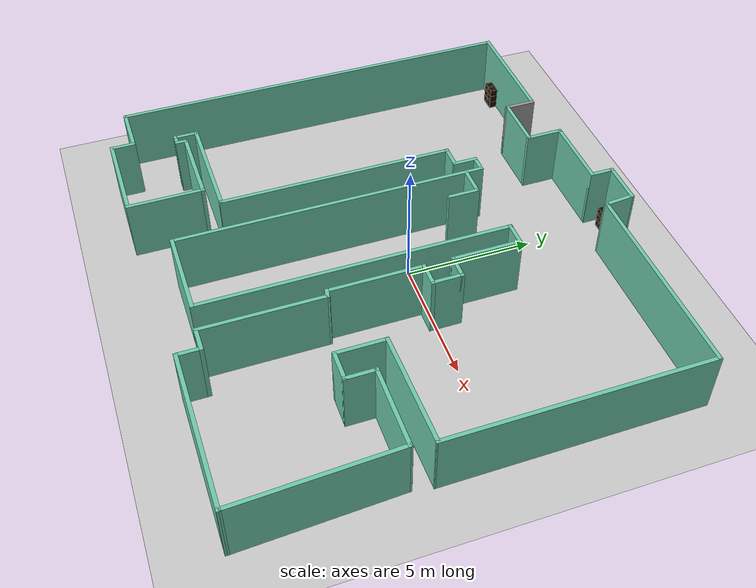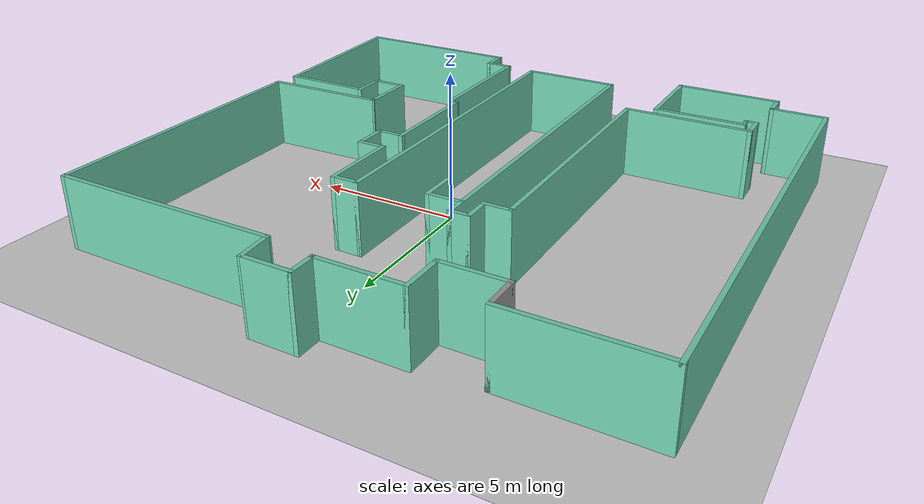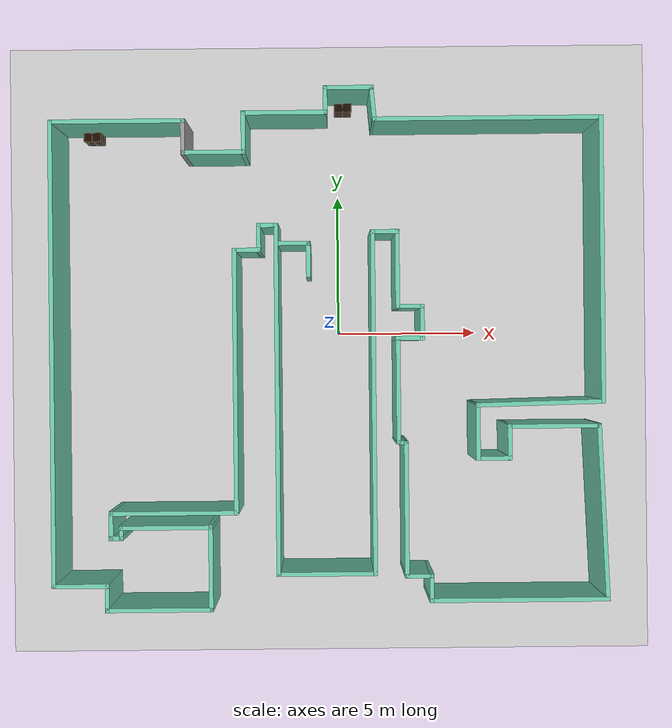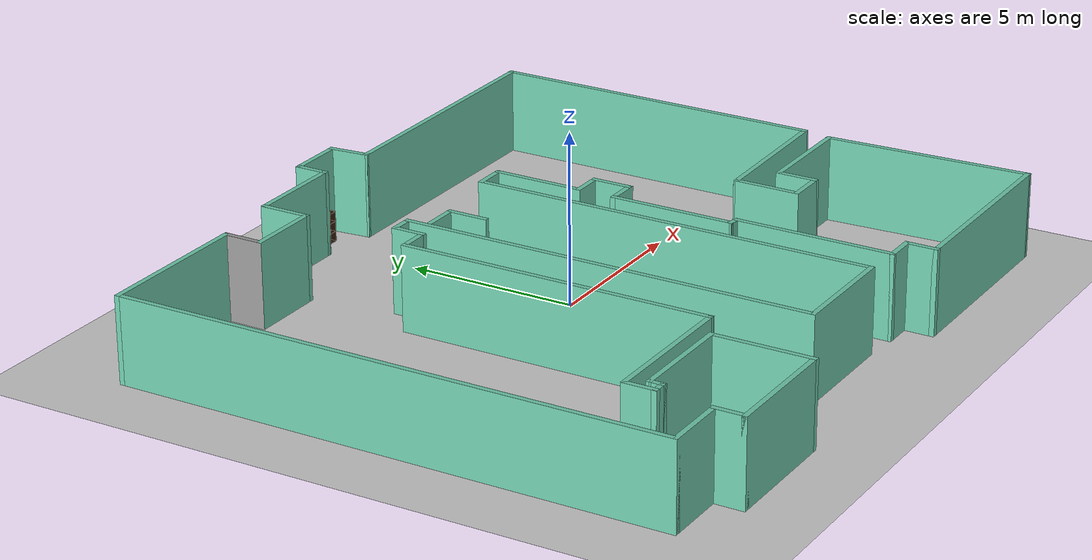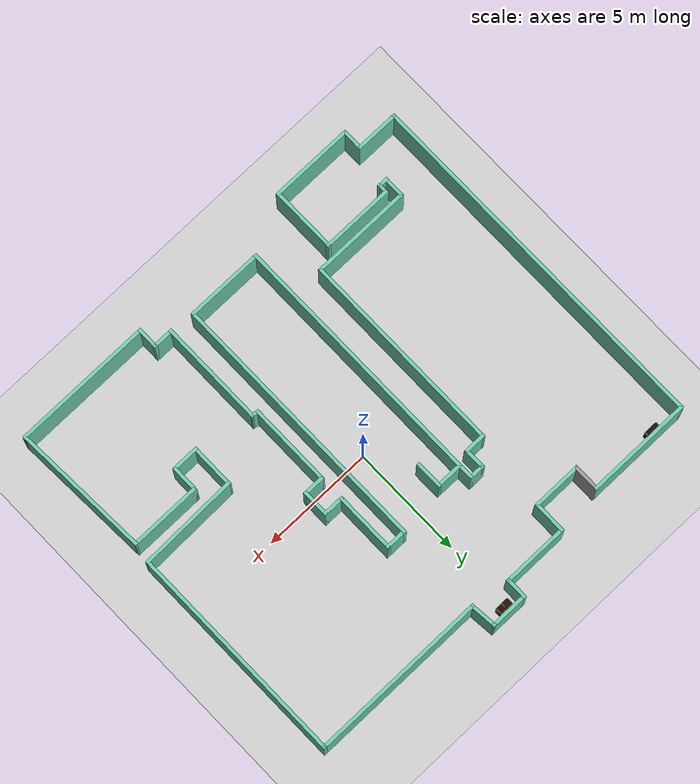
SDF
<sdf version="1.6">
 <world name="default">
  <model name="ground_plane">
   <static>1</static>
   <link name="link">
    <collision name="collision">
     <geometry><plane><normal>0 0 1</normal><size>100 100</size></plane></geometry>
     <surface>
      <contact><collide_bitmask>65535</collide_bitmask></contact>
      <friction><ode><mu>100</mu><mu2>50</mu2></ode></friction>
     </surface>
    </collision>
    <visual name="visual">
     <cast_shadows>0</cast_shadows>
     <geometry><plane><normal>0 0 1</normal><size>100 100</size></plane></geometry>
     <material>
      <script><uri>file://media/materials/scripts/gazebo.material</uri><name>Gazebo/Grey</name></script>
     </material>
    </visual>
   </link>
  </model>
  <model name="map_111">
   <pose>-0.368645 -0.515796 0 0 -0 0</pose>
   <link name="Wall_10">
    <collision name="Wall_10_Collision">
     <geometry><box><size>16.25 0.15 2.5</size></box></geometry>
     <pose>0 0 1.25 0 -0 0</pose>
    </collision>
    <visual name="Wall_10_Visual">
     <pose>0 0 1.25 0 -0 0</pose>
     <geometry><box><size>16.25 0.15 2.5</size></box></geometry>
     <material>
      <script><uri>file://media/materials/scripts/gazebo.material</uri><name>Gazebo/Grey</name></script>
      <ambient>0.435294 0.796078 0.67451 1</ambient>
     </material>
     <meta><layer>0</layer></meta>
    </visual>
    <pose>-9.60153 -0.128241 0 0 -0 -1.5708</pose>
   </link>
   <link name="Wall_15">
    <collision name="Wall_15_Collision">
     <geometry><box><size>10 0.15 2.5</size></box></geometry>
     <pose>0 0 1.25 0 -0 0</pose>
    </collision>
    <visual name="Wall_15_Visual">
     <pose>0 0 1.25 0 -0 0</pose>
     <geometry><box><size>10 0.15 2.5</size></box></geometry>
     <material>
      <script><uri>file://media/materials/scripts/gazebo.material</uri><name>Gazebo/Grey</name></script>
      <ambient>0.435294 0.796078 0.67451 1</ambient>
     </material>
     <meta><layer>0</layer></meta>
    </visual>
    <pose>9.49847 2.99676 0 0 -0 -1.5708</pose>
   </link>
   <link name="Wall_16">
    <collision name="Wall_16_Collision">
     <geometry><box><size>4.5 0.15 2.5</size></box></geometry>
     <pose>0 0 1.25 0 -0 0</pose>
    </collision>
    <visual name="Wall_16_Visual">
     <pose>0 0 1.25 0 -0 0</pose>
     <geometry><box><size>4.5 0.15 2.5</size></box></geometry>
     <material>
      <script><uri>file://media/materials/scripts/gazebo.material</uri><name>Gazebo/Grey</name></script>
      <ambient>0.435294 0.796078 0.67451 1</ambient>
     </material>
     <meta><layer>0</layer></meta>
    </visual>
    <pose>7.32347 -1.97477 0 0 -0 -3.12021</pose>
   </link>
   <link name="Wall_22">
    <collision name="Wall_22_Collision">
     <geometry><box><size>6.25 0.15 2.5</size></box></geometry>
     <pose>0 0 1.25 0 -0 0</pose>
    </collision>
    <visual name="Wall_22_Visual">
     <pose>0 0 1.25 0 -0 0</pose>
     <geometry><box><size>6.25 0.15 2.5</size></box></geometry>
     <material>
      <script><uri>file://media/materials/scripts/gazebo.material</uri><name>Gazebo/Grey</name></script>
      <ambient>0.435294 0.796078 0.67451 1</ambient>
     </material>
     <meta><layer>0</layer></meta>
    </visual>
    <pose>6.54847 -8.77824 0 0 -0 3.14159</pose>
   </link>
   <link name="Wall_23">
    <collision name="Wall_23_Collision">
     <geometry><box><size>1 0.15 2.5</size></box></geometry>
     <pose>0 0 1.25 0 -0 0</pose>
    </collision>
    <visual name="Wall_23_Visual">
     <pose>0 0 1.25 0 -0 0</pose>
     <geometry><box><size>1 0.15 2.5</size></box></geometry>
     <material>
      <script><uri>file://media/materials/scripts/gazebo.material</uri><name>Gazebo/Grey</name></script>
      <ambient>0.435294 0.796078 0.67451 1</ambient>
     </material>
     <meta><layer>0</layer></meta>
    </visual>
    <pose>3.49847 -8.35324 0 0 -0 1.5708</pose>
   </link>
   <link name="Wall_24">
    <collision name="Wall_24_Collision">
     <geometry><box><size>1 0.15 2.5</size></box></geometry>
     <pose>0 0 1.25 0 -0 0</pose>
    </collision>
    <visual name="Wall_24_Visual">
     <pose>0 0 1.25 0 -0 0</pose>
     <geometry><box><size>1 0.15 2.5</size></box></geometry>
     <material>
      <script><uri>file://media/materials/scripts/gazebo.material</uri><name>Gazebo/Grey</name></script>
      <ambient>0.435294 0.796078 0.67451 1</ambient>
     </material>
     <meta><layer>0</layer></meta>
    </visual>
    <pose>3.07347 -7.92824 0 0 -0 3.14159</pose>
   </link>
   <link name="Wall_25">
    <collision name="Wall_25_Collision">
     <geometry><box><size>4.75 0.15 2.5</size></box></geometry>
     <pose>0 0 1.25 0 -0 0</pose>
    </collision>
    <visual name="Wall_25_Visual">
     <pose>0 0 1.25 0 -0 0</pose>
     <geometry><box><size>4.75 0.15 2.5</size></box></geometry>
     <material>
      <script><uri>file://media/materials/scripts/gazebo.material</uri><name>Gazebo/Grey</name></script>
      <ambient>0.435294 0.796078 0.67451 1</ambient>
     </material>
     <meta><layer>0</layer></meta>
    </visual>
    <pose>2.64847 -5.62824 0 0 -0 1.5708</pose>
   </link>
   <link name="Wall_27">
    <collision name="Wall_27_Collision">
     <geometry><box><size>2 0.15 2.5</size></box></geometry>
     <pose>0 0 1.25 0 -0 0</pose>
    </collision>
    <visual name="Wall_27_Visual">
     <pose>0 0 1.25 0 -0 0</pose>
     <geometry><box><size>2 0.15 2.5</size></box></geometry>
     <material>
      <script><uri>file://media/materials/scripts/gazebo.material</uri><name>Gazebo/Grey</name></script>
      <ambient>0.435294 0.796078 0.67451 1</ambient>
     </material>
     <meta><layer>0</layer></meta>
    </visual>
    <pose>5.14847 -2.94629 0 0 -0 -1.5708</pose>
   </link>
   <link name="Wall_28">
    <collision name="Wall_28_Collision">
     <geometry><box><size>1.25 0.15 2.5</size></box></geometry>
     <pose>0 0 1.25 0 -0 0</pose>
    </collision>
    <visual name="Wall_28_Visual">
     <pose>0 0 1.25 0 -0 0</pose>
     <geometry><box><size>1.25 0.15 2.5</size></box></geometry>
     <material>
      <script><uri>file://media/materials/scripts/gazebo.material</uri><name>Gazebo/Grey</name></script>
      <ambient>0.435294 0.796078 0.67451 1</ambient>
     </material>
     <meta><layer>0</layer></meta>
    </visual>
    <pose>5.69847 -3.87129 0 0 -0 0</pose>
   </link>
   <link name="Wall_30">
    <collision name="Wall_30_Collision">
     <geometry><box><size>1.25 0.15 2.5</size></box></geometry>
     <pose>0 0 1.25 0 -0 0</pose>
    </collision>
    <visual name="Wall_30_Visual">
     <pose>0 0 1.25 0 -0 0</pose>
     <geometry><box><size>1.25 0.15 2.5</size></box></geometry>
     <material>
      <script><uri>file://media/materials/scripts/gazebo.material</uri><name>Gazebo/Grey</name></script>
      <ambient>0.435294 0.796078 0.67451 1</ambient>
     </material>
     <meta><layer>0</layer></meta>
    </visual>
    <pose>6.24847 -3.32129 0 0 -0 1.5708</pose>
   </link>
   <link name="Wall_31">
    <collision name="Wall_31_Collision">
     <geometry><box><size>3.25 0.15 2.5</size></box></geometry>
     <pose>0 0 1.25 0 -0 0</pose>
    </collision>
    <visual name="Wall_31_Visual">
     <pose>0 0 1.25 0 -0 0</pose>
     <geometry><box><size>3.25 0.15 2.5</size></box></geometry>
     <material>
      <script><uri>file://media/materials/scripts/gazebo.material</uri><name>Gazebo/Grey</name></script>
      <ambient>0.435294 0.796078 0.67451 1</ambient>
     </material>
     <meta><layer>0</layer></meta>
    </visual>
    <pose>7.79847 -2.77129 0 0 -0 0</pose>
   </link>
   <link name="Wall_33">
    <collision name="Wall_33_Collision">
     <geometry><box><size>6.16215 0.15 2.5</size></box></geometry>
     <pose>0 0 1.25 0 -0 0</pose>
    </collision>
    <visual name="Wall_33_Visual">
     <pose>0 0 1.25 0 -0 0</pose>
     <geometry><box><size>6.16215 0.15 2.5</size></box></geometry>
     <material>
      <script><uri>file://media/materials/scripts/gazebo.material</uri><name>Gazebo/Grey</name></script>
      <ambient>0.435294 0.796078 0.67451 1</ambient>
     </material>
     <meta><layer>0</layer></meta>
    </visual>
    <pose>9.47347 -5.77477 0 0 -0 1.61239</pose>
   </link>
   <link name="Wall_35">
    <collision name="Wall_35_Collision">
     <geometry><box><size>2 0.15 2.5</size></box></geometry>
     <pose>0 0 1.25 0 -0 0</pose>
    </collision>
    <visual name="Wall_35_Visual">
     <pose>0 0 1.25 0 -0 0</pose>
     <geometry><box><size>2 0.15 2.5</size></box></geometry>
     <material>
      <script><uri>file://media/materials/scripts/gazebo.material</uri><name>Gazebo/Grey</name></script>
      <ambient>0.435294 0.796078 0.67451 1</ambient>
     </material>
     <meta><layer>0</layer></meta>
    </visual>
    <pose>-8.67653 -8.17824 0 0 -0 0</pose>
   </link>
   <link name="Wall_36">
    <collision name="Wall_36_Collision">
     <geometry><box><size>1 0.15 2.5</size></box></geometry>
     <pose>0 0 1.25 0 -0 0</pose>
    </collision>
    <visual name="Wall_36_Visual">
     <pose>0 0 1.25 0 -0 0</pose>
     <geometry><box><size>1 0.15 2.5</size></box></geometry>
     <material>
      <script><uri>file://media/materials/scripts/gazebo.material</uri><name>Gazebo/Grey</name></script>
      <ambient>0.435294 0.796078 0.67451 1</ambient>
     </material>
     <meta><layer>0</layer></meta>
    </visual>
    <pose>-7.75153 -8.60324 0 0 -0 -1.5708</pose>
   </link>
   <link name="Wall_37">
    <collision name="Wall_37_Collision">
     <geometry><box><size>3.75 0.15 2.5</size></box></geometry>
     <pose>0 0 1.25 0 -0 0</pose>
    </collision>
    <visual name="Wall_37_Visual">
     <pose>0 0 1.25 0 -0 0</pose>
     <geometry><box><size>3.75 0.15 2.5</size></box></geometry>
     <material>
      <script><uri>file://media/materials/scripts/gazebo.material</uri><name>Gazebo/Grey</name></script>
      <ambient>0.435294 0.796078 0.67451 1</ambient>
     </material>
     <meta><layer>0</layer></meta>
    </visual>
    <pose>-5.95153 -9.02824 0 0 -0 0</pose>
   </link>
   <link name="Wall_38">
    <collision name="Wall_38_Collision">
     <geometry><box><size>3 0.15 2.5</size></box></geometry>
     <pose>0 0 1.25 0 -0 0</pose>
    </collision>
    <visual name="Wall_38_Visual">
     <pose>0 0 1.25 0 -0 0</pose>
     <geometry><box><size>3 0.15 2.5</size></box></geometry>
     <material>
      <script><uri>file://media/materials/scripts/gazebo.material</uri><name>Gazebo/Grey</name></script>
      <ambient>0.435294 0.796078 0.67451 1</ambient>
     </material>
     <meta><layer>0</layer></meta>
    </visual>
    <pose>-4.15153 -7.60324 0 0 -0 1.5708</pose>
   </link>
   <link name="Wall_39">
    <collision name="Wall_39_Collision">
     <geometry><box><size>3.25 0.15 2.5</size></box></geometry>
     <pose>0 0 1.25 0 -0 0</pose>
    </collision>
    <visual name="Wall_39_Visual">
     <pose>0 0 1.25 0 -0 0</pose>
     <geometry><box><size>3.25 0.15 2.5</size></box></geometry>
     <material>
      <script><uri>file://media/materials/scripts/gazebo.material</uri><name>Gazebo/Grey</name></script>
      <ambient>0.435294 0.796078 0.67451 1</ambient>
     </material>
     <meta><layer>0</layer></meta>
    </visual>
    <pose>-5.70153 -6.17824 0 0 -0 3.14159</pose>
   </link>
   <link name="Wall_40">
    <collision name="Wall_40_Collision">
     <geometry><box><size>0.5 0.15 2.5</size></box></geometry>
     <pose>0 0 1.25 0 -0 0</pose>
    </collision>
    <visual name="Wall_40_Visual">
     <pose>0 0 1.25 0 -0 0</pose>
     <geometry><box><size>0.5 0.15 2.5</size></box></geometry>
     <material>
      <script><uri>file://media/materials/scripts/gazebo.material</uri><name>Gazebo/Grey</name></script>
      <ambient>0.435294 0.796078 0.67451 1</ambient>
     </material>
     <meta><layer>0</layer></meta>
    </visual>
    <pose>-7.25153 -6.35324 0 0 -0 -1.5708</pose>
   </link>
   <link name="Wall_41">
    <collision name="Wall_41_Collision">
     <geometry><box><size>0.5 0.15 2.5</size></box></geometry>
     <pose>0 0 1.25 0 -0 0</pose>
    </collision>
    <visual name="Wall_41_Visual">
     <pose>0 0 1.25 0 -0 0</pose>
     <geometry><box><size>0.5 0.15 2.5</size></box></geometry>
     <material>
      <script><uri>file://media/materials/scripts/gazebo.material</uri><name>Gazebo/Grey</name></script>
      <ambient>0.435294 0.796078 0.67451 1</ambient>
     </material>
     <meta><layer>0</layer></meta>
    </visual>
    <pose>-7.42653 -6.52824 0 0 -0 3.14159</pose>
   </link>
   <link name="Wall_42">
    <collision name="Wall_42_Collision">
     <geometry><box><size>1 0.15 2.5</size></box></geometry>
     <pose>0 0 1.25 0 -0 0</pose>
    </collision>
    <visual name="Wall_42_Visual">
     <pose>0 0 1.25 0 -0 0</pose>
     <geometry><box><size>1 0.15 2.5</size></box></geometry>
     <material>
      <script><uri>file://media/materials/scripts/gazebo.material</uri><name>Gazebo/Grey</name></script>
      <ambient>0.435294 0.796078 0.67451 1</ambient>
     </material>
     <meta><layer>0</layer></meta>
    </visual>
    <pose>-7.60153 -6.10324 0 0 -0 1.5708</pose>
   </link>
   <link name="Wall_43">
    <collision name="Wall_43_Collision">
     <geometry><box><size>4.5 0.15 2.5</size></box></geometry>
     <pose>0 0 1.25 0 -0 0</pose>
    </collision>
    <visual name="Wall_43_Visual">
     <pose>0 0 1.25 0 -0 0</pose>
     <geometry><box><size>4.5 0.15 2.5</size></box></geometry>
     <material>
      <script><uri>file://media/materials/scripts/gazebo.material</uri><name>Gazebo/Grey</name></script>
      <ambient>0.435294 0.796078 0.67451 1</ambient>
     </material>
     <meta><layer>0</layer></meta>
    </visual>
    <pose>-5.42653 -5.67824 0 0 -0 0</pose>
   </link>
   <link name="Wall_44">
    <collision name="Wall_44_Collision">
     <geometry><box><size>9.25 0.15 2.5</size></box></geometry>
     <pose>0 0 1.25 0 -0 0</pose>
    </collision>
    <visual name="Wall_44_Visual">
     <pose>0 0 1.25 0 -0 0</pose>
     <geometry><box><size>9.25 0.15 2.5</size></box></geometry>
     <material>
      <script><uri>file://media/materials/scripts/gazebo.material</uri><name>Gazebo/Grey</name></script>
      <ambient>0.435294 0.796078 0.67451 1</ambient>
     </material>
     <meta><layer>0</layer></meta>
    </visual>
    <pose>-3.25153 -1.12824 0 0 -0 1.5708</pose>
   </link>
   <link name="Wall_45">
    <collision name="Wall_45_Collision">
     <geometry><box><size>1 0.15 2.5</size></box></geometry>
     <pose>0 0 1.25 0 -0 0</pose>
    </collision>
    <visual name="Wall_45_Visual">
     <pose>0 0 1.25 0 -0 0</pose>
     <geometry><box><size>1 0.15 2.5</size></box></geometry>
     <material>
      <script><uri>file://media/materials/scripts/gazebo.material</uri><name>Gazebo/Grey</name></script>
      <ambient>0.435294 0.796078 0.67451 1</ambient>
     </material>
     <meta><layer>0</layer></meta>
    </visual>
    <pose>-2.82653 3.42176 0 0 -0 0</pose>
   </link>
   <link name="Wall_46">
    <collision name="Wall_46_Collision">
     <geometry><box><size>1 0.15 2.5</size></box></geometry>
     <pose>0 0 1.25 0 -0 0</pose>
    </collision>
    <visual name="Wall_46_Visual">
     <pose>0 0 1.25 0 -0 0</pose>
     <geometry><box><size>1 0.15 2.5</size></box></geometry>
     <material>
      <script><uri>file://media/materials/scripts/gazebo.material</uri><name>Gazebo/Grey</name></script>
      <ambient>0.435294 0.796078 0.67451 1</ambient>
     </material>
     <meta><layer>0</layer></meta>
    </visual>
    <pose>-2.40153 3.84676 0 0 -0 1.5708</pose>
   </link>
   <link name="Wall_47">
    <collision name="Wall_47_Collision">
     <geometry><box><size>0.75 0.15 2.5</size></box></geometry>
     <pose>0 0 1.25 0 -0 0</pose>
    </collision>
    <visual name="Wall_47_Visual">
     <pose>0 0 1.25 0 -0 0</pose>
     <geometry><box><size>0.75 0.15 2.5</size></box></geometry>
     <material>
      <script><uri>file://media/materials/scripts/gazebo.material</uri><name>Gazebo/Grey</name></script>
      <ambient>0.435294 0.796078 0.67451 1</ambient>
     </material>
     <meta><layer>0</layer></meta>
    </visual>
    <pose>-2.10153 4.27176 0 0 -0 0</pose>
   </link>
   <link name="Wall_48">
    <collision name="Wall_48_Collision">
     <geometry><box><size>12.25 0.15 2.5</size></box></geometry>
     <pose>0 0 1.25 0 -0 0</pose>
    </collision>
    <visual name="Wall_48_Visual">
     <pose>0 0 1.25 0 -0 0</pose>
     <geometry><box><size>12.25 0.15 2.5</size></box></geometry>
     <material>
      <script><uri>file://media/materials/scripts/gazebo.material</uri><name>Gazebo/Grey</name></script>
      <ambient>0.435294 0.796078 0.67451 1</ambient>
     </material>
     <meta><layer>0</layer></meta>
    </visual>
    <pose>-1.80153 -1.77824 0 0 -0 -1.5708</pose>
   </link>
   <link name="Wall_49">
    <collision name="Wall_49_Collision">
     <geometry><box><size>3.5 0.15 2.5</size></box></geometry>
     <pose>0 0 1.25 0 -0 0</pose>
    </collision>
    <visual name="Wall_49_Visual">
     <pose>0 0 1.25 0 -0 0</pose>
     <geometry><box><size>3.5 0.15 2.5</size></box></geometry>
     <material>
      <script><uri>file://media/materials/scripts/gazebo.material</uri><name>Gazebo/Grey</name></script>
      <ambient>0.435294 0.796078 0.67451 1</ambient>
     </material>
     <meta><layer>0</layer></meta>
    </visual>
    <pose>-0.126526 -7.82824 0 0 -0 0</pose>
   </link>
   <link name="Wall_50">
    <collision name="Wall_50_Collision">
     <geometry><box><size>12 0.15 2.5</size></box></geometry>
     <pose>0 0 1.25 0 -0 0</pose>
    </collision>
    <visual name="Wall_50_Visual">
     <pose>0 0 1.25 0 -0 0</pose>
     <geometry><box><size>12 0.15 2.5</size></box></geometry>
     <material>
      <script><uri>file://media/materials/scripts/gazebo.material</uri><name>Gazebo/Grey</name></script>
      <ambient>0.435294 0.796078 0.67451 1</ambient>
     </material>
     <meta><layer>0</layer></meta>
    </visual>
    <pose>1.54847 -1.90324 0 0 -0 1.5708</pose>
   </link>
   <link name="Wall_53">
    <collision name="Wall_53_Collision">
     <geometry><box><size>1 0.15 2.5</size></box></geometry>
     <pose>0 0 1.25 0 -0 0</pose>
    </collision>
    <visual name="Wall_53_Visual">
     <pose>0 0 1.25 0 -0 0</pose>
     <geometry><box><size>1 0.15 2.5</size></box></geometry>
     <material>
      <script><uri>file://media/materials/scripts/gazebo.material</uri><name>Gazebo/Grey</name></script>
      <ambient>0.435294 0.796078 0.67451 1</ambient>
     </material>
     <meta><layer>0</layer></meta>
    </visual>
    <pose>1.97347 4.02176 0 0 -0 0</pose>
   </link>
   <link name="Wall_54">
    <collision name="Wall_54_Collision">
     <geometry><box><size>2.75 0.15 2.5</size></box></geometry>
     <pose>0 0 1.25 0 -0 0</pose>
    </collision>
    <visual name="Wall_54_Visual">
     <pose>0 0 1.25 0 -0 0</pose>
     <geometry><box><size>2.75 0.15 2.5</size></box></geometry>
     <material>
      <script><uri>file://media/materials/scripts/gazebo.material</uri><name>Gazebo/Grey</name></script>
      <ambient>0.435294 0.796078 0.67451 1</ambient>
     </material>
     <meta><layer>0</layer></meta>
    </visual>
    <pose>2.39847 2.72176 0 0 -0 -1.5708</pose>
   </link>
   <link name="Wall_55">
    <collision name="Wall_55_Collision">
     <geometry><box><size>1 0.15 2.5</size></box></geometry>
     <pose>0 0 1.25 0 -0 0</pose>
    </collision>
    <visual name="Wall_55_Visual">
     <pose>0 0 1.25 0 -0 0</pose>
     <geometry><box><size>1 0.15 2.5</size></box></geometry>
     <material>
      <script><uri>file://media/materials/scripts/gazebo.material</uri><name>Gazebo/Grey</name></script>
      <ambient>0.435294 0.796078 0.67451 1</ambient>
     </material>
     <meta><layer>0</layer></meta>
    </visual>
    <pose>2.82347 1.42176 0 0 -0 0</pose>
   </link>
   <link name="Wall_56">
    <collision name="Wall_56_Collision">
     <geometry><box><size>1.25 0.15 2.5</size></box></geometry>
     <pose>0 0 1.25 0 -0 0</pose>
    </collision>
    <visual name="Wall_56_Visual">
     <pose>0 0 1.25 0 -0 0</pose>
     <geometry><box><size>1.25 0.15 2.5</size></box></geometry>
     <material>
      <script><uri>file://media/materials/scripts/gazebo.material</uri><name>Gazebo/Grey</name></script>
      <ambient>0.435294 0.796078 0.67451 1</ambient>
     </material>
     <meta><layer>0</layer></meta>
    </visual>
    <pose>3.24847 0.871759 0 0 -0 -1.5708</pose>
   </link>
   <link name="Wall_57">
    <collision name="Wall_57_Collision">
     <geometry><box><size>1 0.15 2.5</size></box></geometry>
     <pose>0 0 1.25 0 -0 0</pose>
    </collision>
    <visual name="Wall_57_Visual">
     <pose>0 0 1.25 0 -0 0</pose>
     <geometry><box><size>1 0.15 2.5</size></box></geometry>
     <material>
      <script><uri>file://media/materials/scripts/gazebo.material</uri><name>Gazebo/Grey</name></script>
      <ambient>0.435294 0.796078 0.67451 1</ambient>
     </material>
     <meta><layer>0</layer></meta>
    </visual>
    <pose>2.82347 0.321759 0 0 -0 3.14159</pose>
   </link>
   <link name="Wall_58">
    <collision name="Wall_58_Collision">
     <geometry><box><size>3.75 0.15 2.5</size></box></geometry>
     <pose>0 0 1.25 0 -0 0</pose>
    </collision>
    <visual name="Wall_58_Visual">
     <pose>0 0 1.25 0 -0 0</pose>
     <geometry><box><size>3.75 0.15 2.5</size></box></geometry>
     <material>
      <script><uri>file://media/materials/scripts/gazebo.material</uri><name>Gazebo/Grey</name></script>
      <ambient>0.435294 0.796078 0.67451 1</ambient>
     </material>
     <meta><layer>0</layer></meta>
    </visual>
    <pose>2.39847 -1.47824 0 0 -0 -1.5708</pose>
   </link>
   <link name="Wall_59">
    <collision name="Wall_59_Collision">
     <geometry><box><size>0.404951 0.15 2.5</size></box></geometry>
     <pose>0 0 1.25 0 -0 0</pose>
    </collision>
    <visual name="Wall_59_Visual">
     <pose>0 0 1.25 0 -0 0</pose>
     <geometry><box><size>0.404951 0.15 2.5</size></box></geometry>
     <material>
      <script><uri>file://media/materials/scripts/gazebo.material</uri><name>Gazebo/Grey</name></script>
      <ambient>0.435294 0.796078 0.67451 1</ambient>
     </material>
     <meta><layer>0</layer></meta>
    </visual>
    <pose>2.52347 -3.30324 0 0 -0 -0.197396</pose>
   </link>
   <link name="Wall_61">
    <collision name="Wall_61_Collision">
     <geometry><box><size>1.25 0.15 2.5</size></box></geometry>
     <pose>0 0 1.25 0 -0 0</pose>
    </collision>
    <visual name="Wall_61_Visual">
     <pose>0 0 1.25 0 -0 0</pose>
     <geometry><box><size>1.25 0.15 2.5</size></box></geometry>
     <material>
      <script><uri>file://media/materials/scripts/gazebo.material</uri><name>Gazebo/Grey</name></script>
      <ambient>0.435294 0.796078 0.67451 1</ambient>
     </material>
     <meta><layer>0</layer></meta>
    </visual>
    <pose>-1.23551 3.64156 0 0 -0 0</pose>
   </link>
   <link name="Wall_62">
    <collision name="Wall_62_Collision">
     <geometry><box><size>1.25 0.15 2.5</size></box></geometry>
     <pose>0 0 1.25 0 -0 0</pose>
    </collision>
    <visual name="Wall_62_Visual">
     <pose>0 0 1.25 0 -0 0</pose>
     <geometry><box><size>1.25 0.15 2.5</size></box></geometry>
     <material>
      <script><uri>file://media/materials/scripts/gazebo.material</uri><name>Gazebo/Grey</name></script>
      <ambient>0.435294 0.796078 0.67451 1</ambient>
     </material>
     <meta><layer>0</layer></meta>
    </visual>
    <pose>-0.685509 3.09156 0 0 -0 -1.5708</pose>
   </link>
   <link name="Wall_64">
    <collision name="Wall_64_Collision">
     <geometry><box><size>4.75 0.15 2.5</size></box></geometry>
     <pose>0 0 1.25 0 -0 0</pose>
    </collision>
    <visual name="Wall_64_Visual">
     <pose>0 0 1.25 0 -0 0</pose>
     <geometry><box><size>4.75 0.15 2.5</size></box></geometry>
     <material>
      <script><uri>file://media/materials/scripts/gazebo.material</uri><name>Gazebo/Grey</name></script>
      <ambient>0.435294 0.796078 0.67451 1</ambient>
     </material>
     <meta><layer>0</layer></meta>
    </visual>
    <pose>-7.30153 7.92176 0 0 -0 0</pose>
   </link>
   <link name="Wall_65">
    <collision name="Wall_65_Collision">
     <geometry><box><size>1.25 0.15 2.5</size></box></geometry>
     <pose>0 0 1.25 0 -0 0</pose>
    </collision>
    <visual name="Wall_65_Visual">
     <pose>0 0 1.25 0 -0 0</pose>
     <geometry><box><size>1.25 0.15 2.5</size></box></geometry>
     <material>
      <script><uri>file://media/materials/scripts/gazebo.material</uri><name>Gazebo/Grey</name></script>
      <ambient>1 1 1 1</ambient>
     </material>
     <meta><layer>0</layer></meta>
    </visual>
    <pose>-5.00153 7.37176 0 0 -0 -1.5708</pose>
   </link>
   <link name="Wall_66">
    <collision name="Wall_66_Collision">
     <geometry><box><size>2.25 0.15 2.5</size></box></geometry>
     <pose>0 0 1.25 0 -0 0</pose>
    </collision>
    <visual name="Wall_66_Visual">
     <pose>0 0 1.25 0 -0 0</pose>
     <geometry><box><size>2.25 0.15 2.5</size></box></geometry>
     <material>
      <script><uri>file://media/materials/scripts/gazebo.material</uri><name>Gazebo/Grey</name></script>
      <ambient>0.435294 0.796078 0.67451 1</ambient>
     </material>
     <meta><layer>0</layer></meta>
    </visual>
    <pose>-3.95153 6.82176 0 0 -0 0</pose>
   </link>
   <link name="Wall_67">
    <collision name="Wall_67_Collision">
     <geometry><box><size>1.5 0.15 2.5</size></box></geometry>
     <pose>0 0 1.25 0 -0 0</pose>
    </collision>
    <visual name="Wall_67_Visual">
     <pose>0 0 1.25 0 -0 0</pose>
     <geometry><box><size>1.5 0.15 2.5</size></box></geometry>
     <material>
      <script><uri>file://media/materials/scripts/gazebo.material</uri><name>Gazebo/Grey</name></script>
      <ambient>0.435294 0.796078 0.67451 1</ambient>
     </material>
     <meta><layer>0</layer></meta>
    </visual>
    <pose>-2.90153 7.49676 0 0 -0 1.5708</pose>
   </link>
   <link name="Wall_68">
    <collision name="Wall_68_Collision">
     <geometry><box><size>3 0.15 2.5</size></box></geometry>
     <pose>0 0 1.25 0 -0 0</pose>
    </collision>
    <visual name="Wall_68_Visual">
     <pose>0 0 1.25 0 -0 0</pose>
     <geometry><box><size>3 0.15 2.5</size></box></geometry>
     <material>
      <script><uri>file://media/materials/scripts/gazebo.material</uri><name>Gazebo/Grey</name></script>
      <ambient>0.435294 0.796078 0.67451 1</ambient>
     </material>
     <meta><layer>0</layer></meta>
    </visual>
    <pose>-1.47653 8.17176 0 0 -0 0</pose>
   </link>
   <link name="Wall_69">
    <collision name="Wall_69_Collision">
     <geometry><box><size>1 0.15 2.5</size></box></geometry>
     <pose>0 0 1.25 0 -0 0</pose>
    </collision>
    <visual name="Wall_69_Visual">
     <pose>0 0 1.25 0 -0 0</pose>
     <geometry><box><size>1 0.15 2.5</size></box></geometry>
     <material>
      <script><uri>file://media/materials/scripts/gazebo.material</uri><name>Gazebo/Grey</name></script>
      <ambient>0.435294 0.796078 0.67451 1</ambient>
     </material>
     <meta><layer>0</layer></meta>
    </visual>
    <pose>-0.051526 8.59676 0 0 -0 1.5708</pose>
   </link>
   <link name="Wall_70">
    <collision name="Wall_70_Collision">
     <geometry><box><size>1.75 0.15 2.5</size></box></geometry>
     <pose>0 0 1.25 0 -0 0</pose>
    </collision>
    <visual name="Wall_70_Visual">
     <pose>0 0 1.25 0 -0 0</pose>
     <geometry><box><size>1.75 0.15 2.5</size></box></geometry>
     <material>
      <script><uri>file://media/materials/scripts/gazebo.material</uri><name>Gazebo/Grey</name></script>
      <ambient>0.435294 0.796078 0.67451 1</ambient>
     </material>
     <meta><layer>0</layer></meta>
    </visual>
    <pose>0.748474 9.02176 0 0 -0 0</pose>
   </link>
   <link name="Wall_73">
    <collision name="Wall_73_Collision">
     <geometry><box><size>8 0.15 2.5</size></box></geometry>
     <pose>0 0 1.25 0 -0 0</pose>
    </collision>
    <visual name="Wall_73_Visual">
     <pose>0 0 1.25 0 -0 0</pose>
     <geometry><box><size>8 0.15 2.5</size></box></geometry>
     <material>
      <script><uri>file://media/materials/scripts/gazebo.material</uri><name>Gazebo/Grey</name></script>
      <ambient>0.435294 0.796078 0.67451 1</ambient>
     </material>
     <meta><layer>0</layer></meta>
    </visual>
    <pose>5.57347 7.92176 0 0 -0 3.14159</pose>
   </link>
   <link name="Wall_74">
    <collision name="Wall_74_Collision">
     <geometry><box><size>1.25454 0.15 2.5</size></box></geometry>
     <pose>0 0 1.25 0 -0 0</pose>
    </collision>
    <visual name="Wall_74_Visual">
     <pose>0 0 1.25 0 -0 0</pose>
     <geometry><box><size>1.25454 0.15 2.5</size></box></geometry>
     <material>
      <script><uri>file://media/materials/scripts/gazebo.material</uri><name>Gazebo/Grey</name></script>
      <ambient>0.435294 0.796078 0.67451 1</ambient>
     </material>
     <meta><layer>0</layer></meta>
    </visual>
    <pose>1.59847 8.47176 0 0 -0 1.66146</pose>
   </link>
   <static>1</static>
  </model>
  <model name="6_Cube_StorageE_0">
   <link name="Wall_0">
    <pose>0 0 0.01 0 -0 0</pose>
    <inertial>
     <mass>1.6201</mass>
     <inertia><ixx>0.0119</ixx><iyy>0.0631</iyy><izz>0.0513</izz><ixy>0</ixy><ixz>0</ixz><iyz>0</iyz></inertia>
    </inertial>
    <collision name="Wall_0_Collision"><geometry><box><size>0.616 0.296 0.02</size></box></geometry></collision>
    <visual name="Wall_0_Visual">
     <geometry><box><size>0.616 0.296 0.02</size></box></geometry>
     <material>
      <script><uri>file://media/materials/scripts/gazebo.material</uri><name>Gazebo/Grey</name></script>
      <ambient>0.105882 0.0509804 0 1</ambient>
     </material>
    </visual>
   </link>
   <joint name="0_2" type="fixed">
    <pose>-0.308 0 0 0 -0 0</pose>
    <parent>Wall_2</parent>
    <child>Wall_0</child>
    <axis>
     <xyz>1 0 0</xyz>
     <use_parent_model_frame>0</use_parent_model_frame>
     <limit><lower>-1e+16</lower><upper>1e+16</upper></limit>
    </axis>
   </joint>
   <joint name="0_12" type="fixed">
    <parent>Wall_12</parent>
    <child>Wall_0</child>
    <axis>
     <xyz>0 0 1</xyz>
     <use_parent_model_frame>0</use_parent_model_frame>
     <limit><lower>-1e+16</lower><upper>1e+16</upper></limit>
    </axis>
   </joint>
   <joint name="0_4" type="fixed">
    <pose>0.308 0 0 0 -0 0</pose>
    <parent>Wall_4</parent>
    <child>Wall_0</child>
    <axis>
     <xyz>1 0 0</xyz>
     <use_parent_model_frame>0</use_parent_model_frame>
     <limit><lower>-1e+16</lower><upper>1e+16</upper></limit>
    </axis>
   </joint>
   <link name="Wall_10">
    <pose>0 0 0.61 0 -0 0</pose>
    <inertial>
     <mass>1.6201</mass>
     <inertia><ixx>0.0119</ixx><iyy>0.0631</iyy><izz>0.0513</izz><ixy>0</ixy><ixz>0</ixz><iyz>0</iyz></inertia>
    </inertial>
    <collision name="Wall_10_Collision"><geometry><box><size>0.616 0.296 0.02</size></box></geometry></collision>
    <visual name="Wall_10_Visual">
     <geometry><box><size>0.616 0.296 0.02</size></box></geometry>
     <material>
      <script><uri>file://media/materials/scripts/gazebo.material</uri><name>Gazebo/Grey</name></script>
      <ambient>0.105882 0.0509804 0 1</ambient>
     </material>
    </visual>
   </link>
   <joint name="10_2" type="fixed">
    <pose>-0.308 0 0 0 -0 0</pose>
    <parent>Wall_2</parent>
    <child>Wall_10</child>
    <axis>
     <xyz>1 0 0</xyz>
     <use_parent_model_frame>0</use_parent_model_frame>
     <limit><lower>-1e+16</lower><upper>1e+16</upper></limit>
    </axis>
   </joint>
   <joint name="10_12" type="fixed">
    <parent>Wall_12</parent>
    <child>Wall_10</child>
    <axis>
     <xyz>0 0 1</xyz>
     <use_parent_model_frame>0</use_parent_model_frame>
     <limit><lower>-1e+16</lower><upper>1e+16</upper></limit>
    </axis>
   </joint>
   <joint name="10_4" type="fixed">
    <pose>0.308 0 0 0 -0 0</pose>
    <parent>Wall_4</parent>
    <child>Wall_10</child>
    <axis>
     <xyz>1 0 0</xyz>
     <use_parent_model_frame>0</use_parent_model_frame>
     <limit><lower>-1e+16</lower><upper>1e+16</upper></limit>
    </axis>
   </joint>
   <link name="Wall_12">
    <pose>0 0 0.4575 0 -0 0</pose>
    <inertial>
     <mass>2.4065</mass>
     <inertia><ixx>0.0177</ixx><iyy>0.1855</iyy><izz>0.168</izz><ixy>0</ixy><ixz>0</ixz><iyz>0</iyz></inertia>
    </inertial>
    <collision name="Wall_12_Collision"><geometry><box><size>0.02 0.296 0.915</size></box></geometry></collision>
    <visual name="Wall_12_Visual">
     <geometry><box><size>0.02 0.296 0.915</size></box></geometry>
     <material>
      <script><uri>file://media/materials/scripts/gazebo.material</uri><name>Gazebo/Grey</name></script>
      <ambient>0.105882 0.0509804 0 1</ambient>
     </material>
    </visual>
   </link>
   <link name="Wall_2">
    <pose>-0.298 0 0.4575 0 -0 0</pose>
    <inertial>
     <mass>2.4065</mass>
     <inertia><ixx>0.0177</ixx><iyy>0.1855</iyy><izz>0.168</izz><ixy>0</ixy><ixz>0</ixz><iyz>0</iyz></inertia>
    </inertial>
    <collision name="Wall_2_Collision"><geometry><box><size>0.02 0.296 0.915</size></box></geometry></collision>
    <visual name="Wall_2_Visual">
     <geometry><box><size>0.02 0.296 0.915</size></box></geometry>
     <material>
      <script><uri>file://media/materials/scripts/gazebo.material</uri><name>Gazebo/Grey</name></script>
      <ambient>0.105882 0.0509804 0 1</ambient>
     </material>
    </visual>
   </link>
   <link name="Wall_4">
    <pose>0.298 0 0.4575 0 -0 0</pose>
    <inertial>
     <mass>2.4065</mass>
     <inertia><ixx>0.0177</ixx><iyy>0.1855</iyy><izz>0.168</izz><ixy>0</ixy><ixz>0</ixz><iyz>0</iyz></inertia>
    </inertial>
    <collision name="Wall_4_Collision"><geometry><box><size>0.02 0.296 0.915</size></box></geometry></collision>
    <visual name="Wall_4_Visual">
     <geometry><box><size>0.02 0.296 0.915</size></box></geometry>
     <material>
      <script><uri>file://media/materials/scripts/gazebo.material</uri><name>Gazebo/Grey</name></script>
      <ambient>0.105882 0.0509804 0 1</ambient>
     </material>
    </visual>
   </link>
   <link name="Wall_6">
    <pose>0 0 0.905 0 -0 0</pose>
    <inertial>
     <mass>1.6201</mass>
     <inertia><ixx>0.0119</ixx><iyy>0.0631</iyy><izz>0.0513</izz><ixy>0</ixy><ixz>0</ixz><iyz>0</iyz></inertia>
    </inertial>
    <collision name="Wall_6_Collision"><geometry><box><size>0.616 0.296 0.02</size></box></geometry></collision>
    <visual name="Wall_6_Visual">
     <geometry><box><size>0.616 0.296 0.02</size></box></geometry>
     <material>
      <script><uri>file://media/materials/scripts/gazebo.material</uri><name>Gazebo/Grey</name></script>
      <ambient>0.105882 0.0509804 0 1</ambient>
     </material>
    </visual>
   </link>
   <joint name="6_2" type="fixed">
    <pose>-0.308 0 0 0 -0 0</pose>
    <parent>Wall_2</parent>
    <child>Wall_6</child>
    <axis>
     <xyz>2 0 0</xyz>
     <use_parent_model_frame>0</use_parent_model_frame>
     <limit><lower>-1e+16</lower><upper>1e+16</upper></limit>
    </axis>
   </joint>
   <joint name="6_12" type="fixed">
    <parent>Wall_12</parent>
    <child>Wall_6</child>
    <axis>
     <xyz>0 0 1</xyz>
     <use_parent_model_frame>0</use_parent_model_frame>
     <limit><lower>-1e+16</lower><upper>1e+16</upper></limit>
    </axis>
   </joint>
   <joint name="6_4" type="fixed">
    <pose>0.308 0 0 0 -0 0</pose>
    <parent>Wall_4</parent>
    <child>Wall_6</child>
    <axis>
     <xyz>1 0 0</xyz>
     <use_parent_model_frame>0</use_parent_model_frame>
     <limit><lower>-1e+16</lower><upper>1e+16</upper></limit>
    </axis>
   </joint>
   <link name="Wall_8">
    <pose>0 0 0.305 0 -0 0</pose>
    <inertial>
     <mass>1.6201</mass>
     <inertia><ixx>0.0119</ixx><iyy>0.0631</iyy><izz>0.0513</izz><ixy>0</ixy><ixz>0</ixz><iyz>0</iyz></inertia>
    </inertial>
    <collision name="Wall_8_Collision"><geometry><box><size>0.616 0.296 0.02</size></box></geometry></collision>
    <visual name="Wall_8_Visual">
     <geometry><box><size>0.616 0.296 0.02</size></box></geometry>
     <material>
      <script><uri>file://media/materials/scripts/gazebo.material</uri><name>Gazebo/Grey</name></script>
      <ambient>0.105882 0.0509804 0 1</ambient>
     </material>
    </visual>
   </link>
   <joint name="8_2" type="fixed">
    <pose>-0.308 0 0 0 -0 0</pose>
    <parent>Wall_2</parent>
    <child>Wall_8</child>
    <axis>
     <xyz>1 0 0</xyz>
     <use_parent_model_frame>0</use_parent_model_frame>
     <limit><lower>-1e+16</lower><upper>1e+16</upper></limit>
    </axis>
   </joint>
   <joint name="8_12" type="fixed">
    <parent>Wall_12</parent>
    <child>Wall_8</child>
    <axis>
     <xyz>0 0 1</xyz>
     <use_parent_model_frame>0</use_parent_model_frame>
     <limit><lower>-1e+16</lower><upper>1e+16</upper></limit>
    </axis>
   </joint>
   <joint name="8_4" type="fixed">
    <pose>0.308 0 0 0 -0 0</pose>
    <parent>Wall_4</parent>
    <child>Wall_8</child>
    <axis>
     <xyz>1 0 0</xyz>
     <use_parent_model_frame>0</use_parent_model_frame>
     <limit><lower>-1e+16</lower><upper>1e+16</upper></limit>
    </axis>
   </joint>
   <static>1</static>
   <pose>-8.8278 7.1759 0 0 -0 0</pose>
  </model>
  <model name="6_Cube_StorageE_1">
   <link name="Wall_0">
    <pose>0 0 0.01 0 -0 0</pose>
    <inertial>
     <mass>1.6201</mass>
     <inertia><ixx>0.0119</ixx><iyy>0.0631</iyy><izz>0.0513</izz><ixy>0</ixy><ixz>0</ixz><iyz>0</iyz></inertia>
    </inertial>
    <collision name="Wall_0_Collision"><geometry><box><size>0.616 0.296 0.02</size></box></geometry></collision>
    <visual name="Wall_0_Visual">
     <geometry><box><size>0.616 0.296 0.02</size></box></geometry>
     <material>
      <script><uri>file://media/materials/scripts/gazebo.material</uri><name>Gazebo/Grey</name></script>
      <ambient>0.105882 0.0509804 0 1</ambient>
     </material>
    </visual>
   </link>
   <joint name="0_2" type="fixed">
    <pose>-0.308 0 0 0 -0 0</pose>
    <parent>Wall_2</parent>
    <child>Wall_0</child>
    <axis>
     <xyz>1 0 0</xyz>
     <use_parent_model_frame>0</use_parent_model_frame>
     <limit><lower>-1e+16</lower><upper>1e+16</upper></limit>
    </axis>
   </joint>
   <joint name="0_12" type="fixed">
    <parent>Wall_12</parent>
    <child>Wall_0</child>
    <axis>
     <xyz>0 0 1</xyz>
     <use_parent_model_frame>0</use_parent_model_frame>
     <limit><lower>-1e+16</lower><upper>1e+16</upper></limit>
    </axis>
   </joint>
   <joint name="0_4" type="fixed">
    <pose>0.308 0 0 0 -0 0</pose>
    <parent>Wall_4</parent>
    <child>Wall_0</child>
    <axis>
     <xyz>1 0 0</xyz>
     <use_parent_model_frame>0</use_parent_model_frame>
     <limit><lower>-1e+16</lower><upper>1e+16</upper></limit>
    </axis>
   </joint>
   <link name="Wall_10">
    <pose>0 0 0.61 0 -0 0</pose>
    <inertial>
     <mass>1.6201</mass>
     <inertia><ixx>0.0119</ixx><iyy>0.0631</iyy><izz>0.0513</izz><ixy>0</ixy><ixz>0</ixz><iyz>0</iyz></inertia>
    </inertial>
    <collision name="Wall_10_Collision"><geometry><box><size>0.616 0.296 0.02</size></box></geometry></collision>
    <visual name="Wall_10_Visual">
     <geometry><box><size>0.616 0.296 0.02</size></box></geometry>
     <material>
      <script><uri>file://media/materials/scripts/gazebo.material</uri><name>Gazebo/Grey</name></script>
      <ambient>0.105882 0.0509804 0 1</ambient>
     </material>
    </visual>
   </link>
   <joint name="10_2" type="fixed">
    <pose>-0.308 0 0 0 -0 0</pose>
    <parent>Wall_2</parent>
    <child>Wall_10</child>
    <axis>
     <xyz>1 0 0</xyz>
     <use_parent_model_frame>0</use_parent_model_frame>
     <limit><lower>-1e+16</lower><upper>1e+16</upper></limit>
    </axis>
   </joint>
   <joint name="10_12" type="fixed">
    <parent>Wall_12</parent>
    <child>Wall_10</child>
    <axis>
     <xyz>0 0 1</xyz>
     <use_parent_model_frame>0</use_parent_model_frame>
     <limit><lower>-1e+16</lower><upper>1e+16</upper></limit>
    </axis>
   </joint>
   <joint name="10_4" type="fixed">
    <pose>0.308 0 0 0 -0 0</pose>
    <parent>Wall_4</parent>
    <child>Wall_10</child>
    <axis>
     <xyz>1 0 0</xyz>
     <use_parent_model_frame>0</use_parent_model_frame>
     <limit><lower>-1e+16</lower><upper>1e+16</upper></limit>
    </axis>
   </joint>
   <link name="Wall_12">
    <pose>0 0 0.4575 0 -0 0</pose>
    <inertial>
     <mass>2.4065</mass>
     <inertia><ixx>0.0177</ixx><iyy>0.1855</iyy><izz>0.168</izz><ixy>0</ixy><ixz>0</ixz><iyz>0</iyz></inertia>
    </inertial>
    <collision name="Wall_12_Collision"><geometry><box><size>0.02 0.296 0.915</size></box></geometry></collision>
    <visual name="Wall_12_Visual">
     <geometry><box><size>0.02 0.296 0.915</size></box></geometry>
     <material>
      <script><uri>file://media/materials/scripts/gazebo.material</uri><name>Gazebo/Grey</name></script>
      <ambient>0.105882 0.0509804 0 1</ambient>
     </material>
    </visual>
   </link>
   <link name="Wall_2">
    <pose>-0.298 0 0.4575 0 -0 0</pose>
    <inertial>
     <mass>2.4065</mass>
     <inertia><ixx>0.0177</ixx><iyy>0.1855</iyy><izz>0.168</izz><ixy>0</ixy><ixz>0</ixz><iyz>0</iyz></inertia>
    </inertial>
    <collision name="Wall_2_Collision"><geometry><box><size>0.02 0.296 0.915</size></box></geometry></collision>
    <visual name="Wall_2_Visual">
     <geometry><box><size>0.02 0.296 0.915</size></box></geometry>
     <material>
      <script><uri>file://media/materials/scripts/gazebo.material</uri><name>Gazebo/Grey</name></script>
      <ambient>0.105882 0.0509804 0 1</ambient>
     </material>
    </visual>
   </link>
   <link name="Wall_4">
    <pose>0.298 0 0.4575 0 -0 0</pose>
    <inertial>
     <mass>2.4065</mass>
     <inertia><ixx>0.0177</ixx><iyy>0.1855</iyy><izz>0.168</izz><ixy>0</ixy><ixz>0</ixz><iyz>0</iyz></inertia>
    </inertial>
    <collision name="Wall_4_Collision"><geometry><box><size>0.02 0.296 0.915</size></box></geometry></collision>
    <visual name="Wall_4_Visual">
     <geometry><box><size>0.02 0.296 0.915</size></box></geometry>
     <material>
      <script><uri>file://media/materials/scripts/gazebo.material</uri><name>Gazebo/Grey</name></script>
      <ambient>0.105882 0.0509804 0 1</ambient>
     </material>
    </visual>
   </link>
   <link name="Wall_6">
    <pose>0 0 0.905 0 -0 0</pose>
    <inertial>
     <mass>1.6201</mass>
     <inertia><ixx>0.0119</ixx><iyy>0.0631</iyy><izz>0.0513</izz><ixy>0</ixy><ixz>0</ixz><iyz>0</iyz></inertia>
    </inertial>
    <collision name="Wall_6_Collision"><geometry><box><size>0.616 0.296 0.02</size></box></geometry></collision>
    <visual name="Wall_6_Visual">
     <geometry><box><size>0.616 0.296 0.02</size></box></geometry>
     <material>
      <script><uri>file://media/materials/scripts/gazebo.material</uri><name>Gazebo/Grey</name></script>
      <ambient>0.105882 0.0509804 0 1</ambient>
     </material>
    </visual>
   </link>
   <joint name="6_2" type="fixed">
    <pose>-0.308 0 0 0 -0 0</pose>
    <parent>Wall_2</parent>
    <child>Wall_6</child>
    <axis>
     <xyz>2 0 0</xyz>
     <use_parent_model_frame>0</use_parent_model_frame>
     <limit><lower>-1e+16</lower><upper>1e+16</upper></limit>
    </axis>
   </joint>
   <joint name="6_12" type="fixed">
    <parent>Wall_12</parent>
    <child>Wall_6</child>
    <axis>
     <xyz>0 0 1</xyz>
     <use_parent_model_frame>0</use_parent_model_frame>
     <limit><lower>-1e+16</lower><upper>1e+16</upper></limit>
    </axis>
   </joint>
   <joint name="6_4" type="fixed">
    <pose>0.308 0 0 0 -0 0</pose>
    <parent>Wall_4</parent>
    <child>Wall_6</child>
    <axis>
     <xyz>1 0 0</xyz>
     <use_parent_model_frame>0</use_parent_model_frame>
     <limit><lower>-1e+16</lower><upper>1e+16</upper></limit>
    </axis>
   </joint>
   <link name="Wall_8">
    <pose>0 0 0.305 0 -0 0</pose>
    <inertial>
     <mass>1.6201</mass>
     <inertia><ixx>0.0119</ixx><iyy>0.0631</iyy><izz>0.0513</izz><ixy>0</ixy><ixz>0</ixz><iyz>0</iyz></inertia>
    </inertial>
    <collision name="Wall_8_Collision"><geometry><box><size>0.616 0.296 0.02</size></box></geometry></collision>
    <visual name="Wall_8_Visual">
     <geometry><box><size>0.616 0.296 0.02</size></box></geometry>
     <material>
      <script><uri>file://media/materials/scripts/gazebo.material</uri><name>Gazebo/Grey</name></script>
      <ambient>0.105882 0.0509804 0 1</ambient>
     </material>
    </visual>
   </link>
   <joint name="8_2" type="fixed">
    <pose>-0.308 0 0 0 -0 0</pose>
    <parent>Wall_2</parent>
    <child>Wall_8</child>
    <axis>
     <xyz>1 0 0</xyz>
     <use_parent_model_frame>0</use_parent_model_frame>
     <limit><lower>-1e+16</lower><upper>1e+16</upper></limit>
    </axis>
   </joint>
   <joint name="8_12" type="fixed">
    <parent>Wall_12</parent>
    <child>Wall_8</child>
    <axis>
     <xyz>0 0 1</xyz>
     <use_parent_model_frame>0</use_parent_model_frame>
     <limit><lower>-1e+16</lower><upper>1e+16</upper></limit>
    </axis>
   </joint>
   <joint name="8_4" type="fixed">
    <pose>0.308 0 0 0 -0 0</pose>
    <parent>Wall_4</parent>
    <child>Wall_8</child>
    <axis>
     <xyz>1 0 0</xyz>
     <use_parent_model_frame>0</use_parent_model_frame>
     <limit><lower>-1e+16</lower><upper>1e+16</upper></limit>
    </axis>
   </joint>
   <static>1</static>
   <pose>0.208888 8.14401 0 0 -0 0</pose>
  </model>
 </world>
</sdf>
